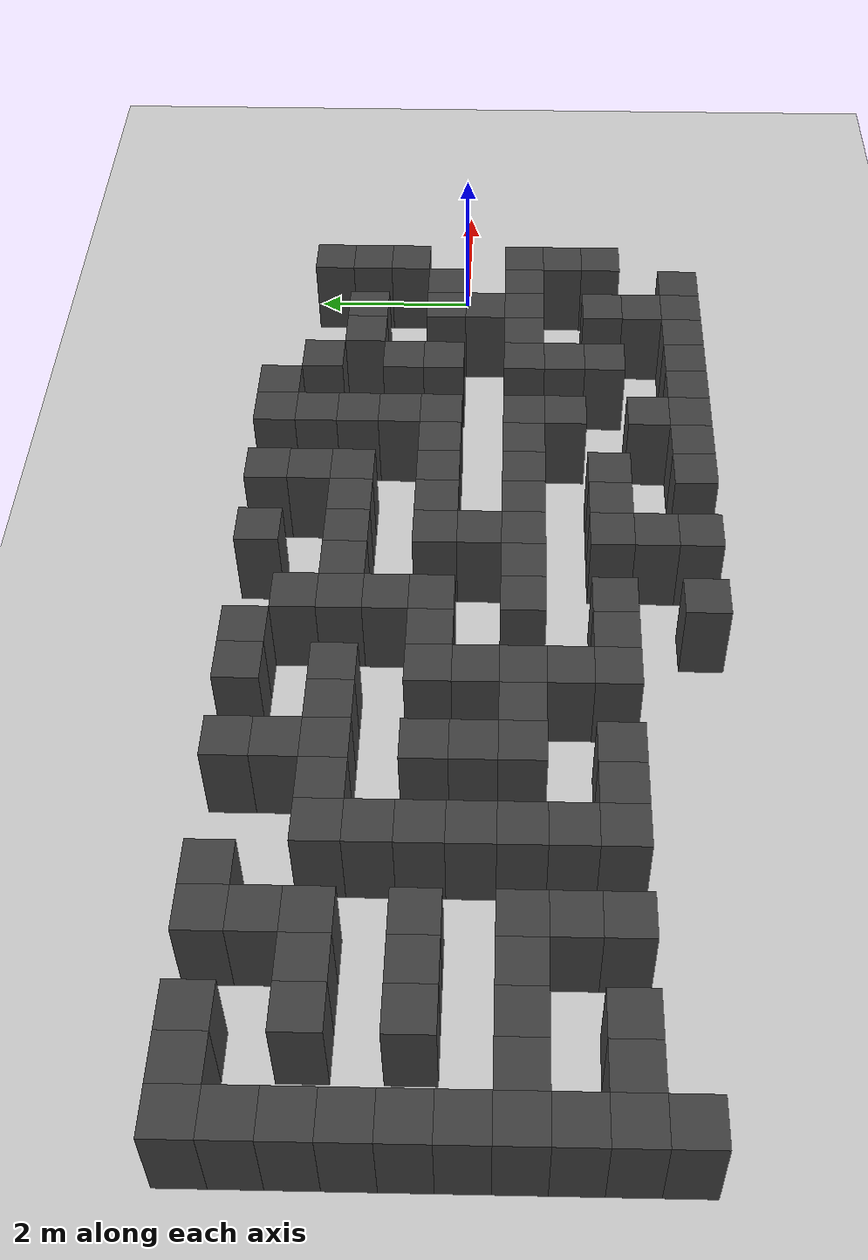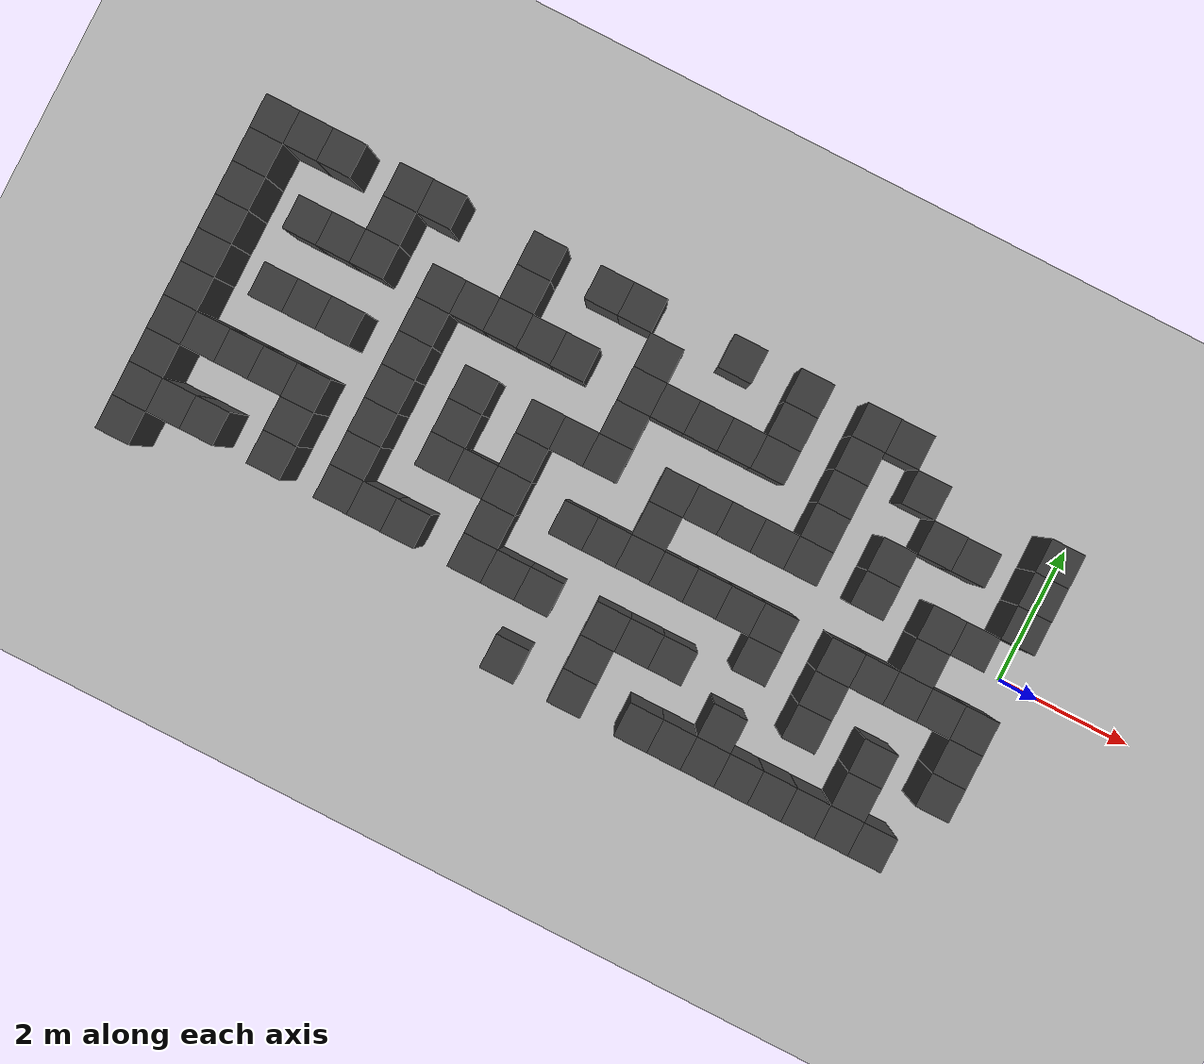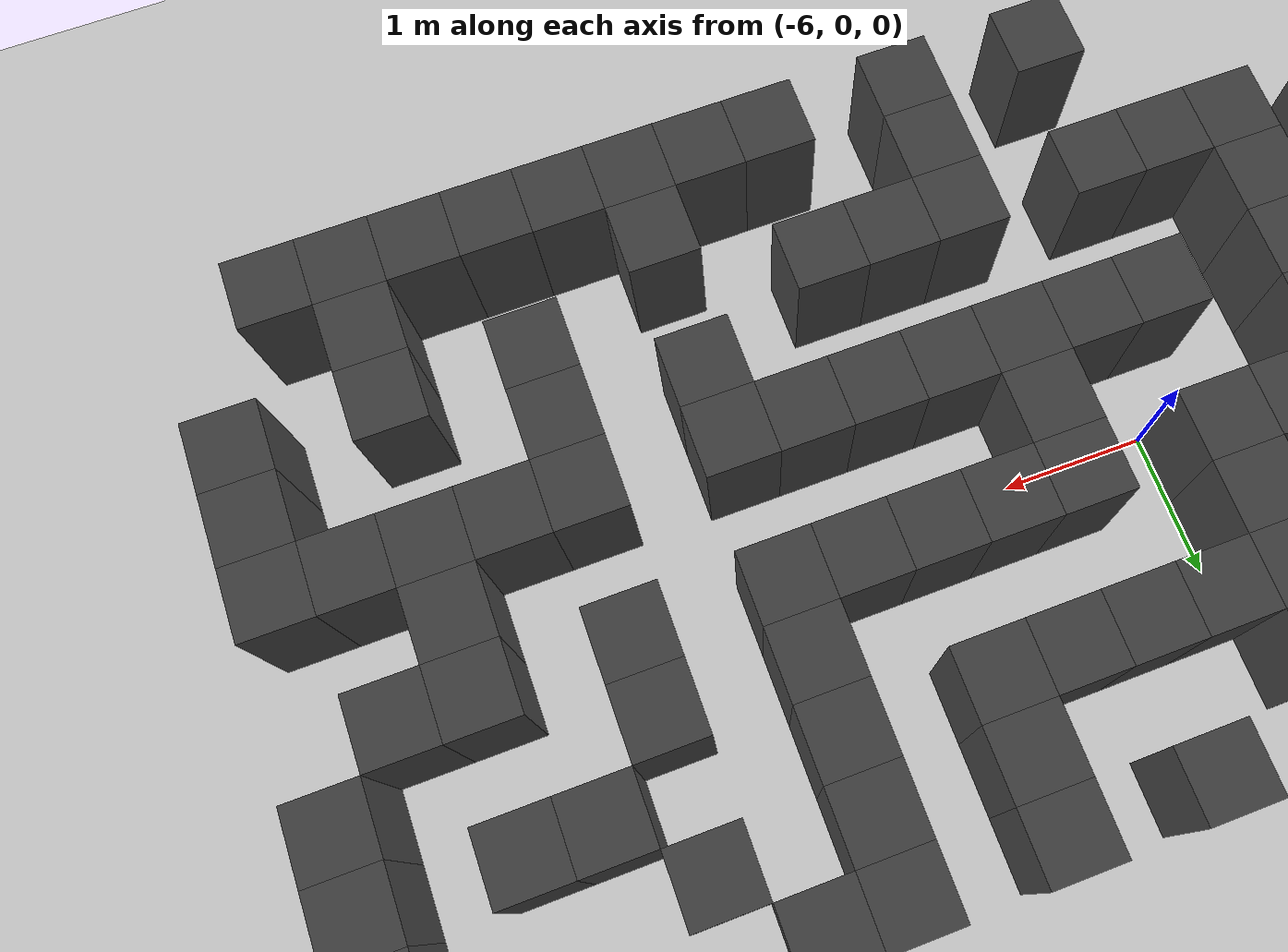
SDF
<sdf version="1.7">
 <world name="map_16734">
  <model name="ground_plane">
   <static>true</static>
   <link name="link">
    <collision name="collision">
     <geometry><plane><normal>0 0 1</normal><size>200 200</size></plane></geometry>
    </collision>
    <visual name="visual">
     <geometry><plane><normal>0 0 1</normal><size>200 200</size></plane></geometry>
     <material><ambient>0.8 0.8 0.8 1</ambient><diffuse>0.8 0.8 0.8 1</diffuse></material>
    </visual>
   </link>
  </model>
  <model name="maze_environment">
   <static>true</static>
   <link name="wall_488">
    <pose>-12.250 2.250 0.500 0 0 0</pose>
    <collision name="col"><geometry><box><size>0.5 0.5 1.0</size></box></geometry></collision>
    <visual name="vis">
     <geometry><box><size>0.5 0.5 1.0</size></box></geometry>
     <material><ambient>0.15 0.15 0.15 1</ambient><diffuse>0.25 0.25 0.25 1</diffuse></material>
    </visual>
   </link>
   <link name="wall_489">
    <pose>-11.750 2.250 0.500 0 0 0</pose>
    <collision name="col"><geometry><box><size>0.5 0.5 1.0</size></box></geometry></collision>
    <visual name="vis">
     <geometry><box><size>0.5 0.5 1.0</size></box></geometry>
     <material><ambient>0.15 0.15 0.15 1</ambient><diffuse>0.25 0.25 0.25 1</diffuse></material>
    </visual>
   </link>
   <link name="wall_490">
    <pose>-11.250 2.250 0.500 0 0 0</pose>
    <collision name="col"><geometry><box><size>0.5 0.5 1.0</size></box></geometry></collision>
    <visual name="vis">
     <geometry><box><size>0.5 0.5 1.0</size></box></geometry>
     <material><ambient>0.15 0.15 0.15 1</ambient><diffuse>0.25 0.25 0.25 1</diffuse></material>
    </visual>
   </link>
   <link name="wall_491">
    <pose>-10.250 2.250 0.500 0 0 0</pose>
    <collision name="col"><geometry><box><size>0.5 0.5 1.0</size></box></geometry></collision>
    <visual name="vis">
     <geometry><box><size>0.5 0.5 1.0</size></box></geometry>
     <material><ambient>0.15 0.15 0.15 1</ambient><diffuse>0.25 0.25 0.25 1</diffuse></material>
    </visual>
   </link>
   <link name="wall_492">
    <pose>-9.750 2.250 0.500 0 0 0</pose>
    <collision name="col"><geometry><box><size>0.5 0.5 1.0</size></box></geometry></collision>
    <visual name="vis">
     <geometry><box><size>0.5 0.5 1.0</size></box></geometry>
     <material><ambient>0.15 0.15 0.15 1</ambient><diffuse>0.25 0.25 0.25 1</diffuse></material>
    </visual>
   </link>
   <link name="wall_493">
    <pose>-8.250 2.250 0.500 0 0 0</pose>
    <collision name="col"><geometry><box><size>0.5 0.5 1.0</size></box></geometry></collision>
    <visual name="vis">
     <geometry><box><size>0.5 0.5 1.0</size></box></geometry>
     <material><ambient>0.15 0.15 0.15 1</ambient><diffuse>0.25 0.25 0.25 1</diffuse></material>
    </visual>
   </link>
   <link name="wall_494">
    <pose>-7.250 2.250 0.500 0 0 0</pose>
    <collision name="col"><geometry><box><size>0.5 0.5 1.0</size></box></geometry></collision>
    <visual name="vis">
     <geometry><box><size>0.5 0.5 1.0</size></box></geometry>
     <material><ambient>0.15 0.15 0.15 1</ambient><diffuse>0.25 0.25 0.25 1</diffuse></material>
    </visual>
   </link>
   <link name="wall_495">
    <pose>-6.750 2.250 0.500 0 0 0</pose>
    <collision name="col"><geometry><box><size>0.5 0.5 1.0</size></box></geometry></collision>
    <visual name="vis">
     <geometry><box><size>0.5 0.5 1.0</size></box></geometry>
     <material><ambient>0.15 0.15 0.15 1</ambient><diffuse>0.25 0.25 0.25 1</diffuse></material>
    </visual>
   </link>
   <link name="wall_496">
    <pose>-5.250 2.250 0.500 0 0 0</pose>
    <collision name="col"><geometry><box><size>0.5 0.5 1.0</size></box></geometry></collision>
    <visual name="vis">
     <geometry><box><size>0.5 0.5 1.0</size></box></geometry>
     <material><ambient>0.15 0.15 0.15 1</ambient><diffuse>0.25 0.25 0.25 1</diffuse></material>
    </visual>
   </link>
   <link name="wall_497">
    <pose>-4.250 2.250 0.500 0 0 0</pose>
    <collision name="col"><geometry><box><size>0.5 0.5 1.0</size></box></geometry></collision>
    <visual name="vis">
     <geometry><box><size>0.5 0.5 1.0</size></box></geometry>
     <material><ambient>0.15 0.15 0.15 1</ambient><diffuse>0.25 0.25 0.25 1</diffuse></material>
    </visual>
   </link>
   <link name="wall_498">
    <pose>-3.250 2.250 0.500 0 0 0</pose>
    <collision name="col"><geometry><box><size>0.5 0.5 1.0</size></box></geometry></collision>
    <visual name="vis">
     <geometry><box><size>0.5 0.5 1.0</size></box></geometry>
     <material><ambient>0.15 0.15 0.15 1</ambient><diffuse>0.25 0.25 0.25 1</diffuse></material>
    </visual>
   </link>
   <link name="wall_499">
    <pose>-2.750 2.250 0.500 0 0 0</pose>
    <collision name="col"><geometry><box><size>0.5 0.5 1.0</size></box></geometry></collision>
    <visual name="vis">
     <geometry><box><size>0.5 0.5 1.0</size></box></geometry>
     <material><ambient>0.15 0.15 0.15 1</ambient><diffuse>0.25 0.25 0.25 1</diffuse></material>
    </visual>
   </link>
   <link name="wall_520">
    <pose>-12.250 1.750 0.500 0 0 0</pose>
    <collision name="col"><geometry><box><size>0.5 0.5 1.0</size></box></geometry></collision>
    <visual name="vis">
     <geometry><box><size>0.5 0.5 1.0</size></box></geometry>
     <material><ambient>0.15 0.15 0.15 1</ambient><diffuse>0.25 0.25 0.25 1</diffuse></material>
    </visual>
   </link>
   <link name="wall_521">
    <pose>-10.250 1.750 0.500 0 0 0</pose>
    <collision name="col"><geometry><box><size>0.5 0.5 1.0</size></box></geometry></collision>
    <visual name="vis">
     <geometry><box><size>0.5 0.5 1.0</size></box></geometry>
     <material><ambient>0.15 0.15 0.15 1</ambient><diffuse>0.25 0.25 0.25 1</diffuse></material>
    </visual>
   </link>
   <link name="wall_522">
    <pose>-8.250 1.750 0.500 0 0 0</pose>
    <collision name="col"><geometry><box><size>0.5 0.5 1.0</size></box></geometry></collision>
    <visual name="vis">
     <geometry><box><size>0.5 0.5 1.0</size></box></geometry>
     <material><ambient>0.15 0.15 0.15 1</ambient><diffuse>0.25 0.25 0.25 1</diffuse></material>
    </visual>
   </link>
   <link name="wall_523">
    <pose>-6.250 1.750 0.500 0 0 0</pose>
    <collision name="col"><geometry><box><size>0.5 0.5 1.0</size></box></geometry></collision>
    <visual name="vis">
     <geometry><box><size>0.5 0.5 1.0</size></box></geometry>
     <material><ambient>0.15 0.15 0.15 1</ambient><diffuse>0.25 0.25 0.25 1</diffuse></material>
    </visual>
   </link>
   <link name="wall_524">
    <pose>-4.250 1.750 0.500 0 0 0</pose>
    <collision name="col"><geometry><box><size>0.5 0.5 1.0</size></box></geometry></collision>
    <visual name="vis">
     <geometry><box><size>0.5 0.5 1.0</size></box></geometry>
     <material><ambient>0.15 0.15 0.15 1</ambient><diffuse>0.25 0.25 0.25 1</diffuse></material>
    </visual>
   </link>
   <link name="wall_525">
    <pose>-3.250 1.750 0.500 0 0 0</pose>
    <collision name="col"><geometry><box><size>0.5 0.5 1.0</size></box></geometry></collision>
    <visual name="vis">
     <geometry><box><size>0.5 0.5 1.0</size></box></geometry>
     <material><ambient>0.15 0.15 0.15 1</ambient><diffuse>0.25 0.25 0.25 1</diffuse></material>
    </visual>
   </link>
   <link name="wall_526">
    <pose>-2.250 1.750 0.500 0 0 0</pose>
    <collision name="col"><geometry><box><size>0.5 0.5 1.0</size></box></geometry></collision>
    <visual name="vis">
     <geometry><box><size>0.5 0.5 1.0</size></box></geometry>
     <material><ambient>0.15 0.15 0.15 1</ambient><diffuse>0.25 0.25 0.25 1</diffuse></material>
    </visual>
   </link>
   <link name="wall_527">
    <pose>-0.250 1.750 0.500 0 0 0</pose>
    <collision name="col"><geometry><box><size>0.5 0.5 1.0</size></box></geometry></collision>
    <visual name="vis">
     <geometry><box><size>0.5 0.5 1.0</size></box></geometry>
     <material><ambient>0.15 0.15 0.15 1</ambient><diffuse>0.25 0.25 0.25 1</diffuse></material>
    </visual>
   </link>
   <link name="wall_535">
    <pose>-12.250 1.250 0.500 0 0 0</pose>
    <collision name="col"><geometry><box><size>0.5 0.5 1.0</size></box></geometry></collision>
    <visual name="vis">
     <geometry><box><size>0.5 0.5 1.0</size></box></geometry>
     <material><ambient>0.15 0.15 0.15 1</ambient><diffuse>0.25 0.25 0.25 1</diffuse></material>
    </visual>
   </link>
   <link name="wall_536">
    <pose>-11.250 1.250 0.500 0 0 0</pose>
    <collision name="col"><geometry><box><size>0.5 0.5 1.0</size></box></geometry></collision>
    <visual name="vis">
     <geometry><box><size>0.5 0.5 1.0</size></box></geometry>
     <material><ambient>0.15 0.15 0.15 1</ambient><diffuse>0.25 0.25 0.25 1</diffuse></material>
    </visual>
   </link>
   <link name="wall_537">
    <pose>-10.750 1.250 0.500 0 0 0</pose>
    <collision name="col"><geometry><box><size>0.5 0.5 1.0</size></box></geometry></collision>
    <visual name="vis">
     <geometry><box><size>0.5 0.5 1.0</size></box></geometry>
     <material><ambient>0.15 0.15 0.15 1</ambient><diffuse>0.25 0.25 0.25 1</diffuse></material>
    </visual>
   </link>
   <link name="wall_538">
    <pose>-10.250 1.250 0.500 0 0 0</pose>
    <collision name="col"><geometry><box><size>0.5 0.5 1.0</size></box></geometry></collision>
    <visual name="vis">
     <geometry><box><size>0.5 0.5 1.0</size></box></geometry>
     <material><ambient>0.15 0.15 0.15 1</ambient><diffuse>0.25 0.25 0.25 1</diffuse></material>
    </visual>
   </link>
   <link name="wall_539">
    <pose>-9.250 1.250 0.500 0 0 0</pose>
    <collision name="col"><geometry><box><size>0.5 0.5 1.0</size></box></geometry></collision>
    <visual name="vis">
     <geometry><box><size>0.5 0.5 1.0</size></box></geometry>
     <material><ambient>0.15 0.15 0.15 1</ambient><diffuse>0.25 0.25 0.25 1</diffuse></material>
    </visual>
   </link>
   <link name="wall_540">
    <pose>-8.750 1.250 0.500 0 0 0</pose>
    <collision name="col"><geometry><box><size>0.5 0.5 1.0</size></box></geometry></collision>
    <visual name="vis">
     <geometry><box><size>0.5 0.5 1.0</size></box></geometry>
     <material><ambient>0.15 0.15 0.15 1</ambient><diffuse>0.25 0.25 0.25 1</diffuse></material>
    </visual>
   </link>
   <link name="wall_541">
    <pose>-8.250 1.250 0.500 0 0 0</pose>
    <collision name="col"><geometry><box><size>0.5 0.5 1.0</size></box></geometry></collision>
    <visual name="vis">
     <geometry><box><size>0.5 0.5 1.0</size></box></geometry>
     <material><ambient>0.15 0.15 0.15 1</ambient><diffuse>0.25 0.25 0.25 1</diffuse></material>
    </visual>
   </link>
   <link name="wall_542">
    <pose>-7.750 1.250 0.500 0 0 0</pose>
    <collision name="col"><geometry><box><size>0.5 0.5 1.0</size></box></geometry></collision>
    <visual name="vis">
     <geometry><box><size>0.5 0.5 1.0</size></box></geometry>
     <material><ambient>0.15 0.15 0.15 1</ambient><diffuse>0.25 0.25 0.25 1</diffuse></material>
    </visual>
   </link>
   <link name="wall_543">
    <pose>-7.250 1.250 0.500 0 0 0</pose>
    <collision name="col"><geometry><box><size>0.5 0.5 1.0</size></box></geometry></collision>
    <visual name="vis">
     <geometry><box><size>0.5 0.5 1.0</size></box></geometry>
     <material><ambient>0.15 0.15 0.15 1</ambient><diffuse>0.25 0.25 0.25 1</diffuse></material>
    </visual>
   </link>
   <link name="wall_544">
    <pose>-6.250 1.250 0.500 0 0 0</pose>
    <collision name="col"><geometry><box><size>0.5 0.5 1.0</size></box></geometry></collision>
    <visual name="vis">
     <geometry><box><size>0.5 0.5 1.0</size></box></geometry>
     <material><ambient>0.15 0.15 0.15 1</ambient><diffuse>0.25 0.25 0.25 1</diffuse></material>
    </visual>
   </link>
   <link name="wall_545">
    <pose>-5.750 1.250 0.500 0 0 0</pose>
    <collision name="col"><geometry><box><size>0.5 0.5 1.0</size></box></geometry></collision>
    <visual name="vis">
     <geometry><box><size>0.5 0.5 1.0</size></box></geometry>
     <material><ambient>0.15 0.15 0.15 1</ambient><diffuse>0.25 0.25 0.25 1</diffuse></material>
    </visual>
   </link>
   <link name="wall_546">
    <pose>-5.250 1.250 0.500 0 0 0</pose>
    <collision name="col"><geometry><box><size>0.5 0.5 1.0</size></box></geometry></collision>
    <visual name="vis">
     <geometry><box><size>0.5 0.5 1.0</size></box></geometry>
     <material><ambient>0.15 0.15 0.15 1</ambient><diffuse>0.25 0.25 0.25 1</diffuse></material>
    </visual>
   </link>
   <link name="wall_547">
    <pose>-4.750 1.250 0.500 0 0 0</pose>
    <collision name="col"><geometry><box><size>0.5 0.5 1.0</size></box></geometry></collision>
    <visual name="vis">
     <geometry><box><size>0.5 0.5 1.0</size></box></geometry>
     <material><ambient>0.15 0.15 0.15 1</ambient><diffuse>0.25 0.25 0.25 1</diffuse></material>
    </visual>
   </link>
   <link name="wall_548">
    <pose>-4.250 1.250 0.500 0 0 0</pose>
    <collision name="col"><geometry><box><size>0.5 0.5 1.0</size></box></geometry></collision>
    <visual name="vis">
     <geometry><box><size>0.5 0.5 1.0</size></box></geometry>
     <material><ambient>0.15 0.15 0.15 1</ambient><diffuse>0.25 0.25 0.25 1</diffuse></material>
    </visual>
   </link>
   <link name="wall_549">
    <pose>-3.250 1.250 0.500 0 0 0</pose>
    <collision name="col"><geometry><box><size>0.5 0.5 1.0</size></box></geometry></collision>
    <visual name="vis">
     <geometry><box><size>0.5 0.5 1.0</size></box></geometry>
     <material><ambient>0.15 0.15 0.15 1</ambient><diffuse>0.25 0.25 0.25 1</diffuse></material>
    </visual>
   </link>
   <link name="wall_550">
    <pose>-1.750 1.250 0.500 0 0 0</pose>
    <collision name="col"><geometry><box><size>0.5 0.5 1.0</size></box></geometry></collision>
    <visual name="vis">
     <geometry><box><size>0.5 0.5 1.0</size></box></geometry>
     <material><ambient>0.15 0.15 0.15 1</ambient><diffuse>0.25 0.25 0.25 1</diffuse></material>
    </visual>
   </link>
   <link name="wall_551">
    <pose>-1.250 1.250 0.500 0 0 0</pose>
    <collision name="col"><geometry><box><size>0.5 0.5 1.0</size></box></geometry></collision>
    <visual name="vis">
     <geometry><box><size>0.5 0.5 1.0</size></box></geometry>
     <material><ambient>0.15 0.15 0.15 1</ambient><diffuse>0.25 0.25 0.25 1</diffuse></material>
    </visual>
   </link>
   <link name="wall_552">
    <pose>-0.250 1.250 0.500 0 0 0</pose>
    <collision name="col"><geometry><box><size>0.5 0.5 1.0</size></box></geometry></collision>
    <visual name="vis">
     <geometry><box><size>0.5 0.5 1.0</size></box></geometry>
     <material><ambient>0.15 0.15 0.15 1</ambient><diffuse>0.25 0.25 0.25 1</diffuse></material>
    </visual>
   </link>
   <link name="wall_571">
    <pose>-12.250 0.750 0.500 0 0 0</pose>
    <collision name="col"><geometry><box><size>0.5 0.5 1.0</size></box></geometry></collision>
    <visual name="vis">
     <geometry><box><size>0.5 0.5 1.0</size></box></geometry>
     <material><ambient>0.15 0.15 0.15 1</ambient><diffuse>0.25 0.25 0.25 1</diffuse></material>
    </visual>
   </link>
   <link name="wall_572">
    <pose>-9.250 0.750 0.500 0 0 0</pose>
    <collision name="col"><geometry><box><size>0.5 0.5 1.0</size></box></geometry></collision>
    <visual name="vis">
     <geometry><box><size>0.5 0.5 1.0</size></box></geometry>
     <material><ambient>0.15 0.15 0.15 1</ambient><diffuse>0.25 0.25 0.25 1</diffuse></material>
    </visual>
   </link>
   <link name="wall_573">
    <pose>-6.250 0.750 0.500 0 0 0</pose>
    <collision name="col"><geometry><box><size>0.5 0.5 1.0</size></box></geometry></collision>
    <visual name="vis">
     <geometry><box><size>0.5 0.5 1.0</size></box></geometry>
     <material><ambient>0.15 0.15 0.15 1</ambient><diffuse>0.25 0.25 0.25 1</diffuse></material>
    </visual>
   </link>
   <link name="wall_574">
    <pose>-3.250 0.750 0.500 0 0 0</pose>
    <collision name="col"><geometry><box><size>0.5 0.5 1.0</size></box></geometry></collision>
    <visual name="vis">
     <geometry><box><size>0.5 0.5 1.0</size></box></geometry>
     <material><ambient>0.15 0.15 0.15 1</ambient><diffuse>0.25 0.25 0.25 1</diffuse></material>
    </visual>
   </link>
   <link name="wall_575">
    <pose>-2.250 0.750 0.500 0 0 0</pose>
    <collision name="col"><geometry><box><size>0.5 0.5 1.0</size></box></geometry></collision>
    <visual name="vis">
     <geometry><box><size>0.5 0.5 1.0</size></box></geometry>
     <material><ambient>0.15 0.15 0.15 1</ambient><diffuse>0.25 0.25 0.25 1</diffuse></material>
    </visual>
   </link>
   <link name="wall_576">
    <pose>-0.250 0.750 0.500 0 0 0</pose>
    <collision name="col"><geometry><box><size>0.5 0.5 1.0</size></box></geometry></collision>
    <visual name="vis">
     <geometry><box><size>0.5 0.5 1.0</size></box></geometry>
     <material><ambient>0.15 0.15 0.15 1</ambient><diffuse>0.25 0.25 0.25 1</diffuse></material>
    </visual>
   </link>
   <link name="wall_585">
    <pose>-12.250 0.250 0.500 0 0 0</pose>
    <collision name="col"><geometry><box><size>0.5 0.5 1.0</size></box></geometry></collision>
    <visual name="vis">
     <geometry><box><size>0.5 0.5 1.0</size></box></geometry>
     <material><ambient>0.15 0.15 0.15 1</ambient><diffuse>0.25 0.25 0.25 1</diffuse></material>
    </visual>
   </link>
   <link name="wall_586">
    <pose>-11.250 0.250 0.500 0 0 0</pose>
    <collision name="col"><geometry><box><size>0.5 0.5 1.0</size></box></geometry></collision>
    <visual name="vis">
     <geometry><box><size>0.5 0.5 1.0</size></box></geometry>
     <material><ambient>0.15 0.15 0.15 1</ambient><diffuse>0.25 0.25 0.25 1</diffuse></material>
    </visual>
   </link>
   <link name="wall_587">
    <pose>-10.750 0.250 0.500 0 0 0</pose>
    <collision name="col"><geometry><box><size>0.5 0.5 1.0</size></box></geometry></collision>
    <visual name="vis">
     <geometry><box><size>0.5 0.5 1.0</size></box></geometry>
     <material><ambient>0.15 0.15 0.15 1</ambient><diffuse>0.25 0.25 0.25 1</diffuse></material>
    </visual>
   </link>
   <link name="wall_588">
    <pose>-10.250 0.250 0.500 0 0 0</pose>
    <collision name="col"><geometry><box><size>0.5 0.5 1.0</size></box></geometry></collision>
    <visual name="vis">
     <geometry><box><size>0.5 0.5 1.0</size></box></geometry>
     <material><ambient>0.15 0.15 0.15 1</ambient><diffuse>0.25 0.25 0.25 1</diffuse></material>
    </visual>
   </link>
   <link name="wall_589">
    <pose>-9.250 0.250 0.500 0 0 0</pose>
    <collision name="col"><geometry><box><size>0.5 0.5 1.0</size></box></geometry></collision>
    <visual name="vis">
     <geometry><box><size>0.5 0.5 1.0</size></box></geometry>
     <material><ambient>0.15 0.15 0.15 1</ambient><diffuse>0.25 0.25 0.25 1</diffuse></material>
    </visual>
   </link>
   <link name="wall_590">
    <pose>-8.250 0.250 0.500 0 0 0</pose>
    <collision name="col"><geometry><box><size>0.5 0.5 1.0</size></box></geometry></collision>
    <visual name="vis">
     <geometry><box><size>0.5 0.5 1.0</size></box></geometry>
     <material><ambient>0.15 0.15 0.15 1</ambient><diffuse>0.25 0.25 0.25 1</diffuse></material>
    </visual>
   </link>
   <link name="wall_591">
    <pose>-7.250 0.250 0.500 0 0 0</pose>
    <collision name="col"><geometry><box><size>0.5 0.5 1.0</size></box></geometry></collision>
    <visual name="vis">
     <geometry><box><size>0.5 0.5 1.0</size></box></geometry>
     <material><ambient>0.15 0.15 0.15 1</ambient><diffuse>0.25 0.25 0.25 1</diffuse></material>
    </visual>
   </link>
   <link name="wall_592">
    <pose>-6.750 0.250 0.500 0 0 0</pose>
    <collision name="col"><geometry><box><size>0.5 0.5 1.0</size></box></geometry></collision>
    <visual name="vis">
     <geometry><box><size>0.5 0.5 1.0</size></box></geometry>
     <material><ambient>0.15 0.15 0.15 1</ambient><diffuse>0.25 0.25 0.25 1</diffuse></material>
    </visual>
   </link>
   <link name="wall_593">
    <pose>-6.250 0.250 0.500 0 0 0</pose>
    <collision name="col"><geometry><box><size>0.5 0.5 1.0</size></box></geometry></collision>
    <visual name="vis">
     <geometry><box><size>0.5 0.5 1.0</size></box></geometry>
     <material><ambient>0.15 0.15 0.15 1</ambient><diffuse>0.25 0.25 0.25 1</diffuse></material>
    </visual>
   </link>
   <link name="wall_594">
    <pose>-5.250 0.250 0.500 0 0 0</pose>
    <collision name="col"><geometry><box><size>0.5 0.5 1.0</size></box></geometry></collision>
    <visual name="vis">
     <geometry><box><size>0.5 0.5 1.0</size></box></geometry>
     <material><ambient>0.15 0.15 0.15 1</ambient><diffuse>0.25 0.25 0.25 1</diffuse></material>
    </visual>
   </link>
   <link name="wall_595">
    <pose>-4.750 0.250 0.500 0 0 0</pose>
    <collision name="col"><geometry><box><size>0.5 0.5 1.0</size></box></geometry></collision>
    <visual name="vis">
     <geometry><box><size>0.5 0.5 1.0</size></box></geometry>
     <material><ambient>0.15 0.15 0.15 1</ambient><diffuse>0.25 0.25 0.25 1</diffuse></material>
    </visual>
   </link>
   <link name="wall_596">
    <pose>-4.250 0.250 0.500 0 0 0</pose>
    <collision name="col"><geometry><box><size>0.5 0.5 1.0</size></box></geometry></collision>
    <visual name="vis">
     <geometry><box><size>0.5 0.5 1.0</size></box></geometry>
     <material><ambient>0.15 0.15 0.15 1</ambient><diffuse>0.25 0.25 0.25 1</diffuse></material>
    </visual>
   </link>
   <link name="wall_597">
    <pose>-3.750 0.250 0.500 0 0 0</pose>
    <collision name="col"><geometry><box><size>0.5 0.5 1.0</size></box></geometry></collision>
    <visual name="vis">
     <geometry><box><size>0.5 0.5 1.0</size></box></geometry>
     <material><ambient>0.15 0.15 0.15 1</ambient><diffuse>0.25 0.25 0.25 1</diffuse></material>
    </visual>
   </link>
   <link name="wall_598">
    <pose>-3.250 0.250 0.500 0 0 0</pose>
    <collision name="col"><geometry><box><size>0.5 0.5 1.0</size></box></geometry></collision>
    <visual name="vis">
     <geometry><box><size>0.5 0.5 1.0</size></box></geometry>
     <material><ambient>0.15 0.15 0.15 1</ambient><diffuse>0.25 0.25 0.25 1</diffuse></material>
    </visual>
   </link>
   <link name="wall_599">
    <pose>-2.250 0.250 0.500 0 0 0</pose>
    <collision name="col"><geometry><box><size>0.5 0.5 1.0</size></box></geometry></collision>
    <visual name="vis">
     <geometry><box><size>0.5 0.5 1.0</size></box></geometry>
     <material><ambient>0.15 0.15 0.15 1</ambient><diffuse>0.25 0.25 0.25 1</diffuse></material>
    </visual>
   </link>
   <link name="wall_600">
    <pose>-1.250 0.250 0.500 0 0 0</pose>
    <collision name="col"><geometry><box><size>0.5 0.5 1.0</size></box></geometry></collision>
    <visual name="vis">
     <geometry><box><size>0.5 0.5 1.0</size></box></geometry>
     <material><ambient>0.15 0.15 0.15 1</ambient><diffuse>0.25 0.25 0.25 1</diffuse></material>
    </visual>
   </link>
   <link name="wall_601">
    <pose>-0.750 0.250 0.500 0 0 0</pose>
    <collision name="col"><geometry><box><size>0.5 0.5 1.0</size></box></geometry></collision>
    <visual name="vis">
     <geometry><box><size>0.5 0.5 1.0</size></box></geometry>
     <material><ambient>0.15 0.15 0.15 1</ambient><diffuse>0.25 0.25 0.25 1</diffuse></material>
    </visual>
   </link>
   <link name="wall_615">
    <pose>-12.250 -0.250 0.500 0 0 0</pose>
    <collision name="col"><geometry><box><size>0.5 0.5 1.0</size></box></geometry></collision>
    <visual name="vis">
     <geometry><box><size>0.5 0.5 1.0</size></box></geometry>
     <material><ambient>0.15 0.15 0.15 1</ambient><diffuse>0.25 0.25 0.25 1</diffuse></material>
    </visual>
   </link>
   <link name="wall_616">
    <pose>-9.250 -0.250 0.500 0 0 0</pose>
    <collision name="col"><geometry><box><size>0.5 0.5 1.0</size></box></geometry></collision>
    <visual name="vis">
     <geometry><box><size>0.5 0.5 1.0</size></box></geometry>
     <material><ambient>0.15 0.15 0.15 1</ambient><diffuse>0.25 0.25 0.25 1</diffuse></material>
    </visual>
   </link>
   <link name="wall_617">
    <pose>-8.250 -0.250 0.500 0 0 0</pose>
    <collision name="col"><geometry><box><size>0.5 0.5 1.0</size></box></geometry></collision>
    <visual name="vis">
     <geometry><box><size>0.5 0.5 1.0</size></box></geometry>
     <material><ambient>0.15 0.15 0.15 1</ambient><diffuse>0.25 0.25 0.25 1</diffuse></material>
    </visual>
   </link>
   <link name="wall_618">
    <pose>-7.250 -0.250 0.500 0 0 0</pose>
    <collision name="col"><geometry><box><size>0.5 0.5 1.0</size></box></geometry></collision>
    <visual name="vis">
     <geometry><box><size>0.5 0.5 1.0</size></box></geometry>
     <material><ambient>0.15 0.15 0.15 1</ambient><diffuse>0.25 0.25 0.25 1</diffuse></material>
    </visual>
   </link>
   <link name="wall_619">
    <pose>-5.250 -0.250 0.500 0 0 0</pose>
    <collision name="col"><geometry><box><size>0.5 0.5 1.0</size></box></geometry></collision>
    <visual name="vis">
     <geometry><box><size>0.5 0.5 1.0</size></box></geometry>
     <material><ambient>0.15 0.15 0.15 1</ambient><diffuse>0.25 0.25 0.25 1</diffuse></material>
    </visual>
   </link>
   <link name="wall_620">
    <pose>-1.250 -0.250 0.500 0 0 0</pose>
    <collision name="col"><geometry><box><size>0.5 0.5 1.0</size></box></geometry></collision>
    <visual name="vis">
     <geometry><box><size>0.5 0.5 1.0</size></box></geometry>
     <material><ambient>0.15 0.15 0.15 1</ambient><diffuse>0.25 0.25 0.25 1</diffuse></material>
    </visual>
   </link>
   <link name="wall_628">
    <pose>-12.250 -0.750 0.500 0 0 0</pose>
    <collision name="col"><geometry><box><size>0.5 0.5 1.0</size></box></geometry></collision>
    <visual name="vis">
     <geometry><box><size>0.5 0.5 1.0</size></box></geometry>
     <material><ambient>0.15 0.15 0.15 1</ambient><diffuse>0.25 0.25 0.25 1</diffuse></material>
    </visual>
   </link>
   <link name="wall_629">
    <pose>-11.750 -0.750 0.500 0 0 0</pose>
    <collision name="col"><geometry><box><size>0.5 0.5 1.0</size></box></geometry></collision>
    <visual name="vis">
     <geometry><box><size>0.5 0.5 1.0</size></box></geometry>
     <material><ambient>0.15 0.15 0.15 1</ambient><diffuse>0.25 0.25 0.25 1</diffuse></material>
    </visual>
   </link>
   <link name="wall_630">
    <pose>-11.250 -0.750 0.500 0 0 0</pose>
    <collision name="col"><geometry><box><size>0.5 0.5 1.0</size></box></geometry></collision>
    <visual name="vis">
     <geometry><box><size>0.5 0.5 1.0</size></box></geometry>
     <material><ambient>0.15 0.15 0.15 1</ambient><diffuse>0.25 0.25 0.25 1</diffuse></material>
    </visual>
   </link>
   <link name="wall_631">
    <pose>-10.750 -0.750 0.500 0 0 0</pose>
    <collision name="col"><geometry><box><size>0.5 0.5 1.0</size></box></geometry></collision>
    <visual name="vis">
     <geometry><box><size>0.5 0.5 1.0</size></box></geometry>
     <material><ambient>0.15 0.15 0.15 1</ambient><diffuse>0.25 0.25 0.25 1</diffuse></material>
    </visual>
   </link>
   <link name="wall_632">
    <pose>-10.250 -0.750 0.500 0 0 0</pose>
    <collision name="col"><geometry><box><size>0.5 0.5 1.0</size></box></geometry></collision>
    <visual name="vis">
     <geometry><box><size>0.5 0.5 1.0</size></box></geometry>
     <material><ambient>0.15 0.15 0.15 1</ambient><diffuse>0.25 0.25 0.25 1</diffuse></material>
    </visual>
   </link>
   <link name="wall_633">
    <pose>-9.250 -0.750 0.500 0 0 0</pose>
    <collision name="col"><geometry><box><size>0.5 0.5 1.0</size></box></geometry></collision>
    <visual name="vis">
     <geometry><box><size>0.5 0.5 1.0</size></box></geometry>
     <material><ambient>0.15 0.15 0.15 1</ambient><diffuse>0.25 0.25 0.25 1</diffuse></material>
    </visual>
   </link>
   <link name="wall_634">
    <pose>-8.250 -0.750 0.500 0 0 0</pose>
    <collision name="col"><geometry><box><size>0.5 0.5 1.0</size></box></geometry></collision>
    <visual name="vis">
     <geometry><box><size>0.5 0.5 1.0</size></box></geometry>
     <material><ambient>0.15 0.15 0.15 1</ambient><diffuse>0.25 0.25 0.25 1</diffuse></material>
    </visual>
   </link>
   <link name="wall_635">
    <pose>-7.750 -0.750 0.500 0 0 0</pose>
    <collision name="col"><geometry><box><size>0.5 0.5 1.0</size></box></geometry></collision>
    <visual name="vis">
     <geometry><box><size>0.5 0.5 1.0</size></box></geometry>
     <material><ambient>0.15 0.15 0.15 1</ambient><diffuse>0.25 0.25 0.25 1</diffuse></material>
    </visual>
   </link>
   <link name="wall_636">
    <pose>-7.250 -0.750 0.500 0 0 0</pose>
    <collision name="col"><geometry><box><size>0.5 0.5 1.0</size></box></geometry></collision>
    <visual name="vis">
     <geometry><box><size>0.5 0.5 1.0</size></box></geometry>
     <material><ambient>0.15 0.15 0.15 1</ambient><diffuse>0.25 0.25 0.25 1</diffuse></material>
    </visual>
   </link>
   <link name="wall_637">
    <pose>-6.250 -0.750 0.500 0 0 0</pose>
    <collision name="col"><geometry><box><size>0.5 0.5 1.0</size></box></geometry></collision>
    <visual name="vis">
     <geometry><box><size>0.5 0.5 1.0</size></box></geometry>
     <material><ambient>0.15 0.15 0.15 1</ambient><diffuse>0.25 0.25 0.25 1</diffuse></material>
    </visual>
   </link>
   <link name="wall_638">
    <pose>-5.750 -0.750 0.500 0 0 0</pose>
    <collision name="col"><geometry><box><size>0.5 0.5 1.0</size></box></geometry></collision>
    <visual name="vis">
     <geometry><box><size>0.5 0.5 1.0</size></box></geometry>
     <material><ambient>0.15 0.15 0.15 1</ambient><diffuse>0.25 0.25 0.25 1</diffuse></material>
    </visual>
   </link>
   <link name="wall_639">
    <pose>-5.250 -0.750 0.500 0 0 0</pose>
    <collision name="col"><geometry><box><size>0.5 0.5 1.0</size></box></geometry></collision>
    <visual name="vis">
     <geometry><box><size>0.5 0.5 1.0</size></box></geometry>
     <material><ambient>0.15 0.15 0.15 1</ambient><diffuse>0.25 0.25 0.25 1</diffuse></material>
    </visual>
   </link>
   <link name="wall_640">
    <pose>-4.750 -0.750 0.500 0 0 0</pose>
    <collision name="col"><geometry><box><size>0.5 0.5 1.0</size></box></geometry></collision>
    <visual name="vis">
     <geometry><box><size>0.5 0.5 1.0</size></box></geometry>
     <material><ambient>0.15 0.15 0.15 1</ambient><diffuse>0.25 0.25 0.25 1</diffuse></material>
    </visual>
   </link>
   <link name="wall_641">
    <pose>-4.250 -0.750 0.500 0 0 0</pose>
    <collision name="col"><geometry><box><size>0.5 0.5 1.0</size></box></geometry></collision>
    <visual name="vis">
     <geometry><box><size>0.5 0.5 1.0</size></box></geometry>
     <material><ambient>0.15 0.15 0.15 1</ambient><diffuse>0.25 0.25 0.25 1</diffuse></material>
    </visual>
   </link>
   <link name="wall_642">
    <pose>-3.750 -0.750 0.500 0 0 0</pose>
    <collision name="col"><geometry><box><size>0.5 0.5 1.0</size></box></geometry></collision>
    <visual name="vis">
     <geometry><box><size>0.5 0.5 1.0</size></box></geometry>
     <material><ambient>0.15 0.15 0.15 1</ambient><diffuse>0.25 0.25 0.25 1</diffuse></material>
    </visual>
   </link>
   <link name="wall_643">
    <pose>-3.250 -0.750 0.500 0 0 0</pose>
    <collision name="col"><geometry><box><size>0.5 0.5 1.0</size></box></geometry></collision>
    <visual name="vis">
     <geometry><box><size>0.5 0.5 1.0</size></box></geometry>
     <material><ambient>0.15 0.15 0.15 1</ambient><diffuse>0.25 0.25 0.25 1</diffuse></material>
    </visual>
   </link>
   <link name="wall_644">
    <pose>-2.250 -0.750 0.500 0 0 0</pose>
    <collision name="col"><geometry><box><size>0.5 0.5 1.0</size></box></geometry></collision>
    <visual name="vis">
     <geometry><box><size>0.5 0.5 1.0</size></box></geometry>
     <material><ambient>0.15 0.15 0.15 1</ambient><diffuse>0.25 0.25 0.25 1</diffuse></material>
    </visual>
   </link>
   <link name="wall_645">
    <pose>-1.750 -0.750 0.500 0 0 0</pose>
    <collision name="col"><geometry><box><size>0.5 0.5 1.0</size></box></geometry></collision>
    <visual name="vis">
     <geometry><box><size>0.5 0.5 1.0</size></box></geometry>
     <material><ambient>0.15 0.15 0.15 1</ambient><diffuse>0.25 0.25 0.25 1</diffuse></material>
    </visual>
   </link>
   <link name="wall_646">
    <pose>-1.250 -0.750 0.500 0 0 0</pose>
    <collision name="col"><geometry><box><size>0.5 0.5 1.0</size></box></geometry></collision>
    <visual name="vis">
     <geometry><box><size>0.5 0.5 1.0</size></box></geometry>
     <material><ambient>0.15 0.15 0.15 1</ambient><diffuse>0.25 0.25 0.25 1</diffuse></material>
    </visual>
   </link>
   <link name="wall_647">
    <pose>-0.750 -0.750 0.500 0 0 0</pose>
    <collision name="col"><geometry><box><size>0.5 0.5 1.0</size></box></geometry></collision>
    <visual name="vis">
     <geometry><box><size>0.5 0.5 1.0</size></box></geometry>
     <material><ambient>0.15 0.15 0.15 1</ambient><diffuse>0.25 0.25 0.25 1</diffuse></material>
    </visual>
   </link>
   <link name="wall_648">
    <pose>-0.250 -0.750 0.500 0 0 0</pose>
    <collision name="col"><geometry><box><size>0.5 0.5 1.0</size></box></geometry></collision>
    <visual name="vis">
     <geometry><box><size>0.5 0.5 1.0</size></box></geometry>
     <material><ambient>0.15 0.15 0.15 1</ambient><diffuse>0.25 0.25 0.25 1</diffuse></material>
    </visual>
   </link>
   <link name="wall_667">
    <pose>-12.250 -1.250 0.500 0 0 0</pose>
    <collision name="col"><geometry><box><size>0.5 0.5 1.0</size></box></geometry></collision>
    <visual name="vis">
     <geometry><box><size>0.5 0.5 1.0</size></box></geometry>
     <material><ambient>0.15 0.15 0.15 1</ambient><diffuse>0.25 0.25 0.25 1</diffuse></material>
    </visual>
   </link>
   <link name="wall_668">
    <pose>-10.250 -1.250 0.500 0 0 0</pose>
    <collision name="col"><geometry><box><size>0.5 0.5 1.0</size></box></geometry></collision>
    <visual name="vis">
     <geometry><box><size>0.5 0.5 1.0</size></box></geometry>
     <material><ambient>0.15 0.15 0.15 1</ambient><diffuse>0.25 0.25 0.25 1</diffuse></material>
    </visual>
   </link>
   <link name="wall_669">
    <pose>-9.250 -1.250 0.500 0 0 0</pose>
    <collision name="col"><geometry><box><size>0.5 0.5 1.0</size></box></geometry></collision>
    <visual name="vis">
     <geometry><box><size>0.5 0.5 1.0</size></box></geometry>
     <material><ambient>0.15 0.15 0.15 1</ambient><diffuse>0.25 0.25 0.25 1</diffuse></material>
    </visual>
   </link>
   <link name="wall_670">
    <pose>-7.250 -1.250 0.500 0 0 0</pose>
    <collision name="col"><geometry><box><size>0.5 0.5 1.0</size></box></geometry></collision>
    <visual name="vis">
     <geometry><box><size>0.5 0.5 1.0</size></box></geometry>
     <material><ambient>0.15 0.15 0.15 1</ambient><diffuse>0.25 0.25 0.25 1</diffuse></material>
    </visual>
   </link>
   <link name="wall_671">
    <pose>-3.250 -1.250 0.500 0 0 0</pose>
    <collision name="col"><geometry><box><size>0.5 0.5 1.0</size></box></geometry></collision>
    <visual name="vis">
     <geometry><box><size>0.5 0.5 1.0</size></box></geometry>
     <material><ambient>0.15 0.15 0.15 1</ambient><diffuse>0.25 0.25 0.25 1</diffuse></material>
    </visual>
   </link>
   <link name="wall_672">
    <pose>-2.250 -1.250 0.500 0 0 0</pose>
    <collision name="col"><geometry><box><size>0.5 0.5 1.0</size></box></geometry></collision>
    <visual name="vis">
     <geometry><box><size>0.5 0.5 1.0</size></box></geometry>
     <material><ambient>0.15 0.15 0.15 1</ambient><diffuse>0.25 0.25 0.25 1</diffuse></material>
    </visual>
   </link>
   <link name="wall_673">
    <pose>-0.250 -1.250 0.500 0 0 0</pose>
    <collision name="col"><geometry><box><size>0.5 0.5 1.0</size></box></geometry></collision>
    <visual name="vis">
     <geometry><box><size>0.5 0.5 1.0</size></box></geometry>
     <material><ambient>0.15 0.15 0.15 1</ambient><diffuse>0.25 0.25 0.25 1</diffuse></material>
    </visual>
   </link>
   <link name="wall_681">
    <pose>-12.250 -1.750 0.500 0 0 0</pose>
    <collision name="col"><geometry><box><size>0.5 0.5 1.0</size></box></geometry></collision>
    <visual name="vis">
     <geometry><box><size>0.5 0.5 1.0</size></box></geometry>
     <material><ambient>0.15 0.15 0.15 1</ambient><diffuse>0.25 0.25 0.25 1</diffuse></material>
    </visual>
   </link>
   <link name="wall_682">
    <pose>-11.750 -1.750 0.500 0 0 0</pose>
    <collision name="col"><geometry><box><size>0.5 0.5 1.0</size></box></geometry></collision>
    <visual name="vis">
     <geometry><box><size>0.5 0.5 1.0</size></box></geometry>
     <material><ambient>0.15 0.15 0.15 1</ambient><diffuse>0.25 0.25 0.25 1</diffuse></material>
    </visual>
   </link>
   <link name="wall_683">
    <pose>-11.250 -1.750 0.500 0 0 0</pose>
    <collision name="col"><geometry><box><size>0.5 0.5 1.0</size></box></geometry></collision>
    <visual name="vis">
     <geometry><box><size>0.5 0.5 1.0</size></box></geometry>
     <material><ambient>0.15 0.15 0.15 1</ambient><diffuse>0.25 0.25 0.25 1</diffuse></material>
    </visual>
   </link>
   <link name="wall_684">
    <pose>-10.250 -1.750 0.500 0 0 0</pose>
    <collision name="col"><geometry><box><size>0.5 0.5 1.0</size></box></geometry></collision>
    <visual name="vis">
     <geometry><box><size>0.5 0.5 1.0</size></box></geometry>
     <material><ambient>0.15 0.15 0.15 1</ambient><diffuse>0.25 0.25 0.25 1</diffuse></material>
    </visual>
   </link>
   <link name="wall_685">
    <pose>-9.250 -1.750 0.500 0 0 0</pose>
    <collision name="col"><geometry><box><size>0.5 0.5 1.0</size></box></geometry></collision>
    <visual name="vis">
     <geometry><box><size>0.5 0.5 1.0</size></box></geometry>
     <material><ambient>0.15 0.15 0.15 1</ambient><diffuse>0.25 0.25 0.25 1</diffuse></material>
    </visual>
   </link>
   <link name="wall_686">
    <pose>-8.750 -1.750 0.500 0 0 0</pose>
    <collision name="col"><geometry><box><size>0.5 0.5 1.0</size></box></geometry></collision>
    <visual name="vis">
     <geometry><box><size>0.5 0.5 1.0</size></box></geometry>
     <material><ambient>0.15 0.15 0.15 1</ambient><diffuse>0.25 0.25 0.25 1</diffuse></material>
    </visual>
   </link>
   <link name="wall_687">
    <pose>-8.250 -1.750 0.500 0 0 0</pose>
    <collision name="col"><geometry><box><size>0.5 0.5 1.0</size></box></geometry></collision>
    <visual name="vis">
     <geometry><box><size>0.5 0.5 1.0</size></box></geometry>
     <material><ambient>0.15 0.15 0.15 1</ambient><diffuse>0.25 0.25 0.25 1</diffuse></material>
    </visual>
   </link>
   <link name="wall_688">
    <pose>-7.250 -1.750 0.500 0 0 0</pose>
    <collision name="col"><geometry><box><size>0.5 0.5 1.0</size></box></geometry></collision>
    <visual name="vis">
     <geometry><box><size>0.5 0.5 1.0</size></box></geometry>
     <material><ambient>0.15 0.15 0.15 1</ambient><diffuse>0.25 0.25 0.25 1</diffuse></material>
    </visual>
   </link>
   <link name="wall_689">
    <pose>-6.750 -1.750 0.500 0 0 0</pose>
    <collision name="col"><geometry><box><size>0.5 0.5 1.0</size></box></geometry></collision>
    <visual name="vis">
     <geometry><box><size>0.5 0.5 1.0</size></box></geometry>
     <material><ambient>0.15 0.15 0.15 1</ambient><diffuse>0.25 0.25 0.25 1</diffuse></material>
    </visual>
   </link>
   <link name="wall_690">
    <pose>-6.250 -1.750 0.500 0 0 0</pose>
    <collision name="col"><geometry><box><size>0.5 0.5 1.0</size></box></geometry></collision>
    <visual name="vis">
     <geometry><box><size>0.5 0.5 1.0</size></box></geometry>
     <material><ambient>0.15 0.15 0.15 1</ambient><diffuse>0.25 0.25 0.25 1</diffuse></material>
    </visual>
   </link>
   <link name="wall_691">
    <pose>-5.250 -1.750 0.500 0 0 0</pose>
    <collision name="col"><geometry><box><size>0.5 0.5 1.0</size></box></geometry></collision>
    <visual name="vis">
     <geometry><box><size>0.5 0.5 1.0</size></box></geometry>
     <material><ambient>0.15 0.15 0.15 1</ambient><diffuse>0.25 0.25 0.25 1</diffuse></material>
    </visual>
   </link>
   <link name="wall_692">
    <pose>-4.750 -1.750 0.500 0 0 0</pose>
    <collision name="col"><geometry><box><size>0.5 0.5 1.0</size></box></geometry></collision>
    <visual name="vis">
     <geometry><box><size>0.5 0.5 1.0</size></box></geometry>
     <material><ambient>0.15 0.15 0.15 1</ambient><diffuse>0.25 0.25 0.25 1</diffuse></material>
    </visual>
   </link>
   <link name="wall_693">
    <pose>-4.250 -1.750 0.500 0 0 0</pose>
    <collision name="col"><geometry><box><size>0.5 0.5 1.0</size></box></geometry></collision>
    <visual name="vis">
     <geometry><box><size>0.5 0.5 1.0</size></box></geometry>
     <material><ambient>0.15 0.15 0.15 1</ambient><diffuse>0.25 0.25 0.25 1</diffuse></material>
    </visual>
   </link>
   <link name="wall_694">
    <pose>-2.250 -1.750 0.500 0 0 0</pose>
    <collision name="col"><geometry><box><size>0.5 0.5 1.0</size></box></geometry></collision>
    <visual name="vis">
     <geometry><box><size>0.5 0.5 1.0</size></box></geometry>
     <material><ambient>0.15 0.15 0.15 1</ambient><diffuse>0.25 0.25 0.25 1</diffuse></material>
    </visual>
   </link>
   <link name="wall_695">
    <pose>-1.250 -1.750 0.500 0 0 0</pose>
    <collision name="col"><geometry><box><size>0.5 0.5 1.0</size></box></geometry></collision>
    <visual name="vis">
     <geometry><box><size>0.5 0.5 1.0</size></box></geometry>
     <material><ambient>0.15 0.15 0.15 1</ambient><diffuse>0.25 0.25 0.25 1</diffuse></material>
    </visual>
   </link>
   <link name="wall_696">
    <pose>-0.250 -1.750 0.500 0 0 0</pose>
    <collision name="col"><geometry><box><size>0.5 0.5 1.0</size></box></geometry></collision>
    <visual name="vis">
     <geometry><box><size>0.5 0.5 1.0</size></box></geometry>
     <material><ambient>0.15 0.15 0.15 1</ambient><diffuse>0.25 0.25 0.25 1</diffuse></material>
    </visual>
   </link>
   <link name="wall_716">
    <pose>-12.250 -2.250 0.500 0 0 0</pose>
    <collision name="col"><geometry><box><size>0.5 0.5 1.0</size></box></geometry></collision>
    <visual name="vis">
     <geometry><box><size>0.5 0.5 1.0</size></box></geometry>
     <material><ambient>0.15 0.15 0.15 1</ambient><diffuse>0.25 0.25 0.25 1</diffuse></material>
    </visual>
   </link>
   <link name="wall_717">
    <pose>-5.250 -2.250 0.500 0 0 0</pose>
    <collision name="col"><geometry><box><size>0.5 0.5 1.0</size></box></geometry></collision>
    <visual name="vis">
     <geometry><box><size>0.5 0.5 1.0</size></box></geometry>
     <material><ambient>0.15 0.15 0.15 1</ambient><diffuse>0.25 0.25 0.25 1</diffuse></material>
    </visual>
   </link>
   <link name="wall_718">
    <pose>-3.250 -2.250 0.500 0 0 0</pose>
    <collision name="col"><geometry><box><size>0.5 0.5 1.0</size></box></geometry></collision>
    <visual name="vis">
     <geometry><box><size>0.5 0.5 1.0</size></box></geometry>
     <material><ambient>0.15 0.15 0.15 1</ambient><diffuse>0.25 0.25 0.25 1</diffuse></material>
    </visual>
   </link>
   <link name="wall_719">
    <pose>-1.250 -2.250 0.500 0 0 0</pose>
    <collision name="col"><geometry><box><size>0.5 0.5 1.0</size></box></geometry></collision>
    <visual name="vis">
     <geometry><box><size>0.5 0.5 1.0</size></box></geometry>
     <material><ambient>0.15 0.15 0.15 1</ambient><diffuse>0.25 0.25 0.25 1</diffuse></material>
    </visual>
   </link>
   <link name="wall_737">
    <pose>-6.250 -2.750 0.500 0 0 0</pose>
    <collision name="col"><geometry><box><size>0.5 0.5 1.0</size></box></geometry></collision>
    <visual name="vis">
     <geometry><box><size>0.5 0.5 1.0</size></box></geometry>
     <material><ambient>0.15 0.15 0.15 1</ambient><diffuse>0.25 0.25 0.25 1</diffuse></material>
    </visual>
   </link>
   <link name="wall_738">
    <pose>-5.250 -2.750 0.500 0 0 0</pose>
    <collision name="col"><geometry><box><size>0.5 0.5 1.0</size></box></geometry></collision>
    <visual name="vis">
     <geometry><box><size>0.5 0.5 1.0</size></box></geometry>
     <material><ambient>0.15 0.15 0.15 1</ambient><diffuse>0.25 0.25 0.25 1</diffuse></material>
    </visual>
   </link>
   <link name="wall_739">
    <pose>-4.250 -2.750 0.500 0 0 0</pose>
    <collision name="col"><geometry><box><size>0.5 0.5 1.0</size></box></geometry></collision>
    <visual name="vis">
     <geometry><box><size>0.5 0.5 1.0</size></box></geometry>
     <material><ambient>0.15 0.15 0.15 1</ambient><diffuse>0.25 0.25 0.25 1</diffuse></material>
    </visual>
   </link>
   <link name="wall_740">
    <pose>-3.750 -2.750 0.500 0 0 0</pose>
    <collision name="col"><geometry><box><size>0.5 0.5 1.0</size></box></geometry></collision>
    <visual name="vis">
     <geometry><box><size>0.5 0.5 1.0</size></box></geometry>
     <material><ambient>0.15 0.15 0.15 1</ambient><diffuse>0.25 0.25 0.25 1</diffuse></material>
    </visual>
   </link>
   <link name="wall_741">
    <pose>-3.250 -2.750 0.500 0 0 0</pose>
    <collision name="col"><geometry><box><size>0.5 0.5 1.0</size></box></geometry></collision>
    <visual name="vis">
     <geometry><box><size>0.5 0.5 1.0</size></box></geometry>
     <material><ambient>0.15 0.15 0.15 1</ambient><diffuse>0.25 0.25 0.25 1</diffuse></material>
    </visual>
   </link>
   <link name="wall_742">
    <pose>-2.750 -2.750 0.500 0 0 0</pose>
    <collision name="col"><geometry><box><size>0.5 0.5 1.0</size></box></geometry></collision>
    <visual name="vis">
     <geometry><box><size>0.5 0.5 1.0</size></box></geometry>
     <material><ambient>0.15 0.15 0.15 1</ambient><diffuse>0.25 0.25 0.25 1</diffuse></material>
    </visual>
   </link>
   <link name="wall_743">
    <pose>-2.250 -2.750 0.500 0 0 0</pose>
    <collision name="col"><geometry><box><size>0.5 0.5 1.0</size></box></geometry></collision>
    <visual name="vis">
     <geometry><box><size>0.5 0.5 1.0</size></box></geometry>
     <material><ambient>0.15 0.15 0.15 1</ambient><diffuse>0.25 0.25 0.25 1</diffuse></material>
    </visual>
   </link>
   <link name="wall_744">
    <pose>-1.750 -2.750 0.500 0 0 0</pose>
    <collision name="col"><geometry><box><size>0.5 0.5 1.0</size></box></geometry></collision>
    <visual name="vis">
     <geometry><box><size>0.5 0.5 1.0</size></box></geometry>
     <material><ambient>0.15 0.15 0.15 1</ambient><diffuse>0.25 0.25 0.25 1</diffuse></material>
    </visual>
   </link>
   <link name="wall_745">
    <pose>-1.250 -2.750 0.500 0 0 0</pose>
    <collision name="col"><geometry><box><size>0.5 0.5 1.0</size></box></geometry></collision>
    <visual name="vis">
     <geometry><box><size>0.5 0.5 1.0</size></box></geometry>
     <material><ambient>0.15 0.15 0.15 1</ambient><diffuse>0.25 0.25 0.25 1</diffuse></material>
    </visual>
   </link>
   <link name="wall_746">
    <pose>-0.750 -2.750 0.500 0 0 0</pose>
    <collision name="col"><geometry><box><size>0.5 0.5 1.0</size></box></geometry></collision>
    <visual name="vis">
     <geometry><box><size>0.5 0.5 1.0</size></box></geometry>
     <material><ambient>0.15 0.15 0.15 1</ambient><diffuse>0.25 0.25 0.25 1</diffuse></material>
    </visual>
   </link>
  </model>
 </world>
</sdf>
